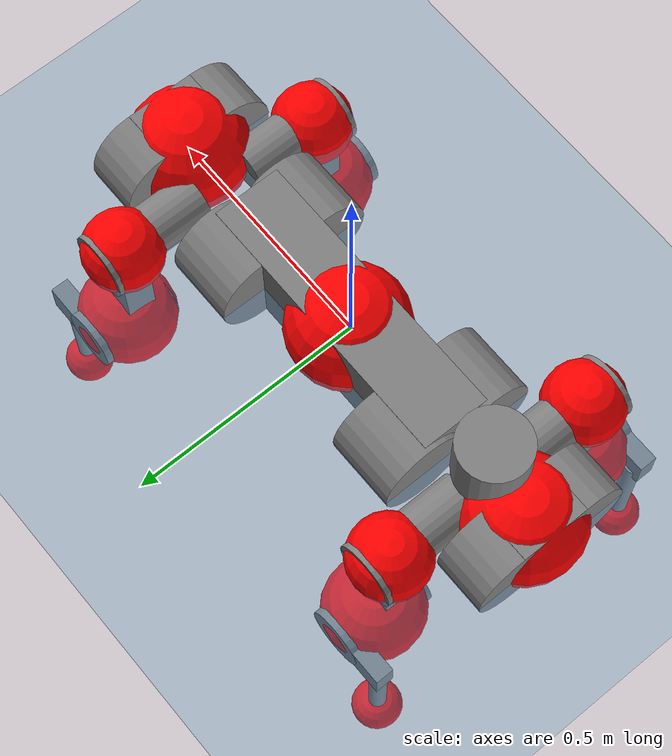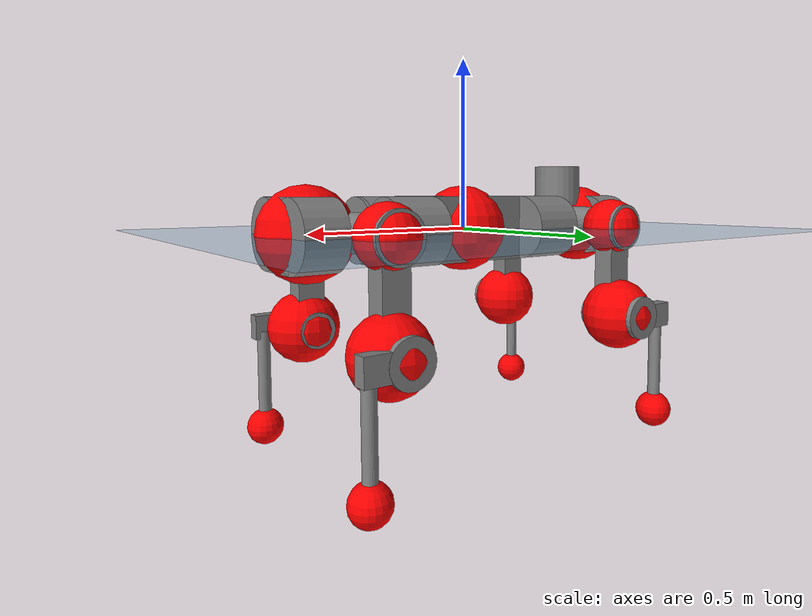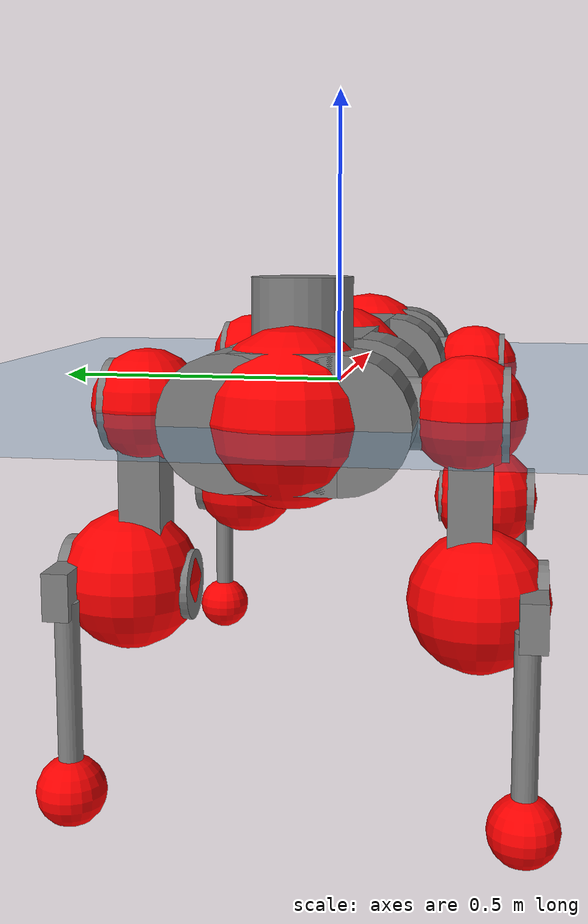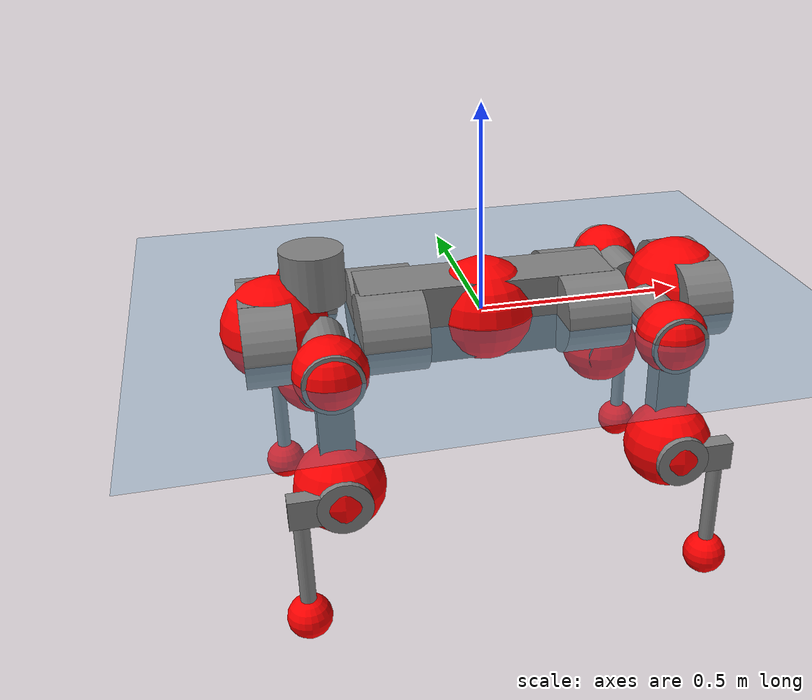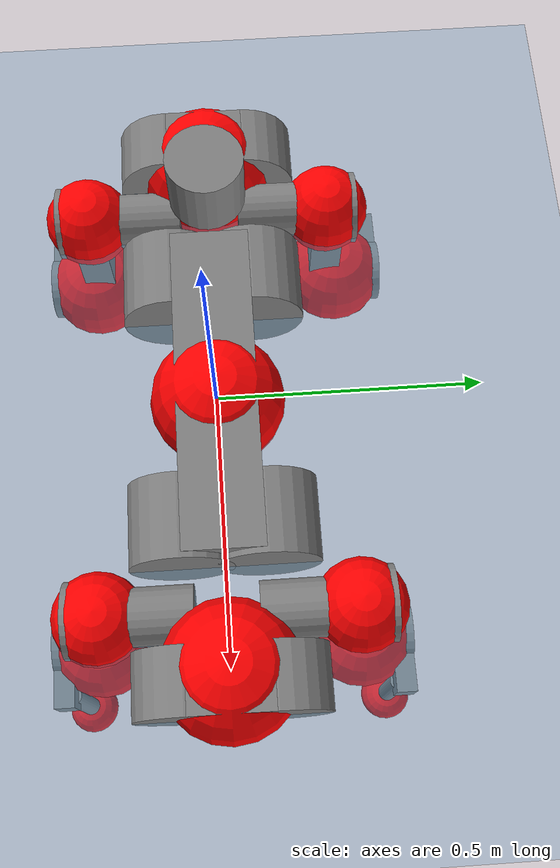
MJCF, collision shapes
<mujoco model="anymal_c">
  <compiler angle="radian" assetdir="assets" balanceinertia="true" inertiafromgeom="false"/>

  <option timestep="0.005" density="1.2" viscosity="2e-05"/>

  <size nkey="1"/>

  <visual>
    <quality shadowsize="8192"/>
    <map shadowclip="0.5"/>
  </visual>

  <default>
    <default class="/">
      <material specular="0" shininess="0.25"/>
      <geom contype="0" conaffinity="0" group="1" solref="-1000 -80"/>
      <site size="0.01 0.005 0.005" group="5"/>
      <general forcelimited="true" forcerange="-80 80" biastype="affine" gainprm="80" biasprm="0 -80 -2"/>
      <default class="anymal_c">
        <joint armature="0.01" damping="0.01" frictionloss="0.1"/>
        <default class="visual">
          <geom type="mesh" group="2"/>
          <default class="visual_zflip"/>
        </default>
        <default class="collision">
          <geom type="cylinder" group="3"/>
          <default class="foot">
            <geom size="0.03 0 0" type="sphere" condim="6" priority="1" friction="0.8 0.02 0.01" solimp="0.015 1 0.03"/>
          </default>
        </default>
      </default>
      <default class="reward_collision_sphere">
        <geom group="5" rgba="1 0 0 1"/>
      </default>
    </default>
  </default>

  <asset>
    <texture type="skybox" colorspace="auto" name="//unnamed_texture_0" builtin="gradient" rgb1="0.95 0.95 0.95" rgb2="0.95 0.95 0.95" width="100" height="600"/>
    <texture type="2d" colorspace="auto" name="texplane" builtin="checker" rgb1="0.345 0.575 0.748" rgb2="0.345 0.575 0.748" markrgb="1 1 1" width="512" height="512"/>
    <texture type="2d" colorspace="linear" name="base" file="base.png"/>
    <texture type="2d" colorspace="linear" name="top_shell" file="top_shell.png"/>
    <texture type="2d" colorspace="linear" name="bottom_shell" file="bottom_shell.png"/>
    <texture type="2d" colorspace="linear" name="remote" file="remote.png"/>
    <texture type="2d" colorspace="linear" name="hatch" file="hatch.png"/>
    <texture type="2d" colorspace="linear" name="handle" file="handle.png"/>
    <texture type="2d" colorspace="linear" name="face" file="face.png"/>
    <texture type="2d" colorspace="linear" name="battery" file="battery.png"/>
    <texture type="2d" colorspace="linear" name="lidar_cage" file="lidar_cage.png"/>
    <texture type="2d" colorspace="linear" name="depth_camera" file="depth_camera.png"/>
    <texture type="2d" colorspace="linear" name="wide_angle_camera" file="wide_angle_camera.png"/>
    <texture type="2d" colorspace="linear" name="lidar" file="lidar.png"/>
    <texture type="2d" colorspace="linear" name="drive" file="drive.png"/>
    <texture type="2d" colorspace="linear" name="hip_l" file="hip_l.png"/>
    <texture type="2d" colorspace="linear" name="shank_l" file="shank_l.png"/>
    <texture type="2d" colorspace="linear" name="foot" file="foot.png"/>
    <texture type="2d" colorspace="linear" name="thigh" file="thigh.png"/>
    <texture type="2d" colorspace="linear" name="shank_r" file="shank_r.png"/>
    <texture type="2d" colorspace="linear" name="hip_r" file="hip_r.png"/>
    <material name="MatPlane" class="/" texture="texplane" texuniform="true" texrepeat="2 2" specular="0.9" shininess="0.5"/>
    <material name="black_plastic" class="/" rgba="0.007 0.007 0.007 1"/>
    <material name="green" class="/" rgba="0.052 0.178 0.033 1"/>
    <material name="red" class="/" rgba="0.178 0.006 0.005 1"/>
    <material name="yellow" class="/" rgba="0.178 0.119 0.006 1"/>
    <material name="lwl" class="/" rgba="0.8 0.8 0.8 1"/>
    <material name="base" class="/" texture="base"/>
    <material name="top_shell" class="/" texture="top_shell"/>
    <material name="bottom_shell" class="/" texture="bottom_shell"/>
    <material name="hip_l" class="/" texture="hip_l"/>
    <material name="thigh" class="/" texture="thigh"/>
    <material name="shank_l" class="/" texture="shank_l"/>
    <material name="foot" class="/" texture="foot"/>
    <material name="hip_r" class="/" texture="hip_r"/>
    <material name="shank" class="/" texture="shank_r"/>
    <material name="hatch" class="/" texture="hatch"/>
    <material name="remote" class="/" texture="remote"/>
    <material name="handle" class="/" texture="handle"/>
    <material name="face" class="/" texture="face"/>
    <material name="depth_camera" class="/" texture="depth_camera"/>
    <material name="wide_angle_camera" class="/" texture="wide_angle_camera"/>
    <material name="battery" class="/" texture="battery"/>
    <material name="lidar_cage" class="/" texture="lidar_cage"/>
    <material name="lidar" class="/" texture="lidar"/>
    <material name="drive" class="/" texture="drive"/>
    <mesh name="base_0" class="/" file="base_0.obj"/>
    <mesh name="base_1" class="/" file="base_1.obj"/>
    <mesh name="base_2" class="/" file="base_2.obj"/>
    <mesh name="base_3" class="/" file="base_3.obj"/>
    <mesh name="base_4" class="/" file="base_4.obj"/>
    <mesh name="base_5" class="/" file="base_5.obj"/>
    <mesh name="top_shell" class="/" file="top_shell.obj"/>
    <mesh name="bottom_shell" class="/" file="bottom_shell.obj"/>
    <mesh name="remote" class="/" file="remote.obj"/>
    <mesh name="handle" class="/" file="handle.obj"/>
    <mesh name="face" class="/" file="face.obj"/>
    <mesh name="wide_angle_camera" class="/" file="wide_angle_camera.obj"/>
    <mesh name="depth_camera" class="/" file="depth_camera.obj"/>
    <mesh name="battery" class="/" file="battery.obj"/>
    <mesh name="lidar_cage" class="/" file="lidar_cage.obj"/>
    <mesh name="lidar" class="/" file="lidar.obj"/>
    <mesh name="drive" class="/" file="drive.obj"/>
    <mesh name="hip_l" class="/" file="hip_l.obj"/>
    <mesh name="thigh" class="/" file="thigh.obj"/>
    <mesh name="shank_l" class="/" file="shank_l.obj"/>
    <mesh name="foot" class="/" file="foot.obj"/>
    <mesh name="hip_r" class="/" file="hip_r.obj"/>
    <mesh name="hatch" class="/" file="hatch.obj"/>
    <mesh name="shank_r" class="/" file="shank_r.obj"/>
  </asset>

  <worldbody>
    <geom name="floor" class="/" size="100 100 0.125" type="plane" group="0" material="MatPlane"/>
    <light name="toplight_shadow" class="/" pos="0 0 5" dir="0.0990148 0.0990148 -0.990148" type="directional" ambient="0.04 0.04 0.04" diffuse="0.55 0.55 0.55" specular="0.12 0.12 0.12"/>
    <light name="toplight_fill" class="/" pos="0 0 5" dir="0.0990148 0.0990148 -0.990148" type="directional" castshadow="false" ambient="0.04 0.04 0.04" diffuse="0.3 0.3 0.3" specular="0.08 0.08 0.08"/>
    <body name="trunk" childclass="anymal_c" pos="0.0047577 0.00171358 0.00231662" quat="0.999998 -0.000773212 0.00070417 -0.00157764">
      <inertial pos="0.00521638 -0.00283891 0.0452578" quat="0.504028 0.500019 0.476182 0.518832" mass="21.6662" diaginertia="0.898194 1.00189 0.145535"/>
      <joint name="//unnamed_joint_0" type="free" armature="0" damping="0" frictionloss="0"/>
      <geom name="//unnamed_geom_1" class="visual" material="green" mesh="base_0"/>
      <geom name="//unnamed_geom_2" class="visual" material="yellow" mesh="base_1"/>
      <geom name="//unnamed_geom_3" class="visual" material="red" mesh="base_2"/>
      <geom name="//unnamed_geom_4" class="visual" material="black_plastic" mesh="base_3"/>
      <geom name="//unnamed_geom_5" class="visual" material="lwl" mesh="base_4"/>
      <geom name="//unnamed_geom_6" class="visual" material="base" mesh="base_5"/>
      <geom name="trunk_1" class="collision" size="0.30639 0.0739563 0.0950867" type="box"/>
      <geom name="trunk_2" class="collision" size="0.0950867 0.0765976" pos="0.240429 0.0776253 0" quat="0.707107 0 0.707107 0"/>
      <geom name="trunk_3" class="collision" size="0.0950867 0.0765976" pos="-0.240429 0.0776253 0" quat="0.707107 0 0.707107 0"/>
      <geom name="trunk_4" class="collision" size="0.0950867 0.0765976" pos="0.240429 -0.0776253 0" quat="0.707107 0 0.707107 0"/>
      <geom name="trunk_5" class="collision" size="0.0950867 0.0765976" pos="-0.240429 -0.0776253 0" quat="0.707107 0 0.707107 0"/>
      <geom name="//unnamed_geom_12" class="visual" material="top_shell" mesh="top_shell"/>
      <geom name="//unnamed_geom_13" class="visual" material="bottom_shell" mesh="bottom_shell"/>
      <geom name="//unnamed_geom_14" class="visual" material="remote" mesh="remote"/>
      <geom name="//unnamed_geom_15" class="visual" material="handle" mesh="handle"/>
      <geom name="//unnamed_geom_16" class="visual" pos="0.458196 0 0" quat="1 0 0 0" material="face" mesh="face"/>
      <geom name="trunk_6" class="collision" size="0.0581085 0.0739563 0.0950867" pos="0.518995 0 0" type="box"/>
      <geom name="//unnamed_geom_18" class="collision" size="0.0950867 0.0581085" pos="0.518995 0.0776253 0" quat="0.707107 0 0.707107 0"/>
      <geom name="//unnamed_geom_19" class="collision" size="0.0950867 0.0581085" pos="0.518995 -0.0776253 0" quat="0.707107 0 0.707107 0"/>
      <geom name="//unnamed_geom_20" class="visual" pos="0.510311 0 -0.0267503" quat="0.965926 0 0.258819 0" material="depth_camera" mesh="depth_camera"/>
      <geom name="//unnamed_geom_21" class="visual" pos="0.56708 0 0.0142994" material="wide_angle_camera" mesh="wide_angle_camera"/>
      <geom name="//unnamed_geom_22" class="visual_zflip" pos="-0.458196 0 0" quat="0 0 0 1" material="face" mesh="face"/>
      <geom name="trunk_7" class="collision" size="0.0581085 0.0739563 0.0950867" pos="-0.518995 0 0" quat="0 0 0 1" type="box"/>
      <geom name="//unnamed_geom_24" class="collision" size="0.0950867 0.0581085" pos="-0.518995 -0.0776253 0" quat="0 -0.707107 0 0.707107"/>
      <geom name="//unnamed_geom_25" class="collision" size="0.0950867 0.0581085" pos="-0.518995 0.0776253 0" quat="0 -0.707107 0 0.707107"/>
      <geom name="//unnamed_geom_26" class="visual" pos="-0.510311 0 -0.0267503" quat="0 -0.258819 0 0.965926" material="depth_camera" mesh="depth_camera"/>
      <geom name="//unnamed_geom_27" class="visual_zflip" pos="-0.56708 0 0.0142994" quat="0 0 0 1" material="wide_angle_camera" mesh="wide_angle_camera"/>
      <geom name="//unnamed_geom_28" class="visual" material="battery" mesh="battery"/>
      <geom name="//unnamed_geom_29" class="visual" pos="0 0.0848289 0.0288903" quat="0.683013 -0.183013 0.183013 0.683013" material="depth_camera" mesh="depth_camera"/>
      <geom name="//unnamed_geom_30" class="visual" pos="0 -0.0848289 0.0288903" quat="0.683013 0.183013 0.183013 -0.683013" material="depth_camera" mesh="depth_camera"/>
      <geom name="//unnamed_geom_31" class="visual" pos="-0.402373 0 0.0702074" quat="1 0 0 0" material="lidar_cage" mesh="lidar_cage"/>
      <geom name="trunk_8" class="collision" size="0.0739563 0.0633911" pos="-0.402373 0 0.12752"/>
      <geom name="//unnamed_geom_33" class="visual" pos="-0.402373 1.38033e-06 0.13583" quat="0.707107 0 0 -0.707107" material="lidar" mesh="lidar"/>
      <geom name="//unnamed_geom_34" class="visual" pos="0.331515 0.115274 2.65186e-09" quat="0.258819 0.965926 0 0" material="drive" mesh="drive"/>
      <geom name="//unnamed_geom_35" class="visual" pos="0.331515 -0.115274 -2.65186e-09" quat="0.258819 -0.965926 0 0" material="drive" mesh="drive"/>
      <geom name="//unnamed_geom_36" class="visual" pos="-0.331515 0.115274 -2.65186e-09" quat="0 0 0.965926 -0.258819" material="drive" mesh="drive"/>
      <geom name="//unnamed_geom_37" class="visual" pos="-0.331515 -0.115274 2.65186e-09" quat="0 0 -0.965926 -0.258819" material="drive" mesh="drive"/>
      <geom name="//unnamed_geom_38" class="visual" pos="0.128229 0 0.0697298" quat="1 0 0 0" material="hatch" mesh="hatch"/>
      <geom name="//unnamed_geom_39" class="reward_collision_sphere" size="0.126782"/>
      <geom name="//unnamed_geom_40" class="reward_collision_sphere" size="0.126782" pos="0.497439 0 0"/>
      <geom name="//unnamed_geom_41" class="reward_collision_sphere" size="0.126782" pos="-0.497439 0 0"/>
      <site name="imu" pos="0.260638 0.0585977 0.0474142" size="0.0105652"/>
      <camera name="track" pos="0 -2.21787 0" quat="0.707107 0.707107 0 0" mode="trackcom"/>
      <camera name="ego_camera" pos="0.497439 0 -0.0382081" quat="-0.5 -0.5 0.5 0.5"/>
      <body name="LF_HIP" pos="0.33323 0.115797 0.0047536" quat="0.254384 0.967103 0.00110942 -0.000541094">
        <inertial pos="0.0651285 -0.0145019 -0.00830208" quat="-0.104964 0.707534 -0.129815 0.686677" mass="2.95363" diaginertia="0.00864407 0.007435 0.00227938"/>
        <joint name="LF_HAA" pos="0 0 0" axis="0.999904 -0.0131729 0.00436552" range="-0.875957 0.481622" armature="0.00751997" damping="0.025022" frictionloss="0.0969141"/>
        <geom name="//unnamed_geom_42" class="visual" pos="0 0.000155997 -2.56224e-05" quat="0.258819 -0.965926 0 0" material="hip_l" mesh="hip_l"/>
        <geom name="//unnamed_geom_43" class="visual" pos="0.0662146 -0.0802248 -0.0451807" quat="0.183013 -0.683013 0.683013 0.183013" material="drive" mesh="drive"/>
        <geom name="//unnamed_geom_44" class="collision" size="0.0528259 0.0739563" pos="0.0662146 -0.0132626 -0.00659568" quat="-0.353553 -0.612372 0.612372 -0.353553"/>
        <body name="LF_THIGH" pos="0.0661652 -0.0806231 -0.0418005" quat="0.182287 -0.683211 0.682893 0.183442">
          <inertial pos="0.0327285 0.00799357 -0.224771" quat="0.99315 -0.00606475 -0.0808453 0.0841394" mass="3.64015" diaginertia="0.0520435 0.0530995 0.00346014"/>
          <joint name="LF_HFE" pos="0 0 0" axis="0.999998 -0.00116332 -0.00162067" range="-3.15991 2.95467" armature="0.0120995" damping="0.051548" frictionloss="0.106717"/>
          <geom name="//unnamed_geom_45" class="visual" pos="-6.99032e-05 -1.10151e-07 0" quat="0.707107 0 0 -0.707107" material="thigh" mesh="thigh"/>
          <geom name="//unnamed_geom_46" class="collision" size="0.0686737 0.0422607" pos="0.0442168 0 0" quat="0.5 0.5 -0.5 -0.5"/>
          <geom name="//unnamed_geom_47" class="collision" size="0.0396194 0.0316956 0.149301" pos="0.0331626 0 -0.134984" quat="0.707107 0 0 -0.707107" type="box"/>
          <geom name="//unnamed_geom_48" class="visual" pos="0.110874 0 -0.272233" quat="1 0 0 0" material="drive" mesh="drive"/>
          <geom name="//unnamed_geom_49" class="collision" size="0.0528259 0.0739563" pos="0.0334942 0 -0.272233" quat="0.707107 0 0.707107 0"/>
          <geom name="//unnamed_geom_50" class="reward_collision_sphere" size="0.0845215" pos="0.0276355 0 0"/>
          <body name="LF_SHANK" pos="0.100896 -0.00865828 -0.276495" quat="1 -7.59314e-05 -5.79254e-05 -2.19112e-05">
            <inertial pos="0.00596647 -0.0650344 -0.0813658" quat="0.993004 -0.115506 -0.000516266 -0.0245143" mass="0.636978" diaginertia="0.016126 0.0156001 0.000902698"/>
            <joint name="LF_KFE" pos="0 0 0" axis="0.99998 -0.00621244 -0.00126233" stiffness="0.0452968" range="-3.22399 3.28138" armature="0.0109167" damping="0.00775789" frictionloss="0.0958922"/>
            <geom name="//unnamed_geom_51" class="visual" pos="-2.27939e-05 -0.000121538 0" quat="0.707107 0 0 -0.707107" material="shank_l" mesh="shank_l"/>
            <geom name="LF_kfe_act" class="collision" size="0.0633911 0.0211304" pos="0.0221084 0 0" quat="0.5 0.5 -0.5 -0.5"/>
            <geom name="//unnamed_geom_53" class="collision" size="0.0607488 0.0356575 0.0200739" pos="0.0221084 -0.0637625 0" quat="0.5 0.5 -0.5 -0.5" type="box"/>
            <geom name="//unnamed_geom_54" class="visual" pos="0.0144257 -0.0975698 -0.32283" quat="0.382683 0 0 -0.92388" material="foot" mesh="foot"/>
            <geom name="LF_calf" class="collision" size="0.0184891 0.149235" pos="0.0144257 -0.0975307 -0.161415" quat="0.707107 0 0 -0.707107"/>
            <geom name="LF_foot" class="foot" size="0.0413984" pos="0.0144257 -0.0975307 -0.301338" quat="0.707107 0 0 -0.707107"/>
            <geom name="//unnamed_geom_57" class="reward_collision_sphere" size="0.105652" pos="-0.055271 0 0"/>
            <geom name="//unnamed_geom_58" class="reward_collision_sphere" size="0.0528259" pos="0.0144257 -0.0975307 -0.301338"/>
            <site name="LF_foot" class="foot" pos="0.0144257 -0.0975307 -0.301338" quat="0.707107 0 0 -0.707107" size="0.0105652"/>
          </body>
        </body>
      </body>
      <body name="RF_HIP" pos="0.329556 -0.117608 -0.0083398" quat="0.259302 -0.965796 -0.000271741 -5.15433e-05">
        <inertial pos="0.0623376 0.0213414 -0.00663027" quat="0.105414 0.673366 0.153474 0.71548" mass="2.93469" diaginertia="0.00891837 0.00726088 0.00237896"/>
        <joint name="RF_HAA" pos="0 0 0" axis="0.999999 0.00115677 0.000289262" range="-0.591288 0.757932" armature="0.0103768" damping="0.0162616" frictionloss="0.103649"/>
        <geom name="//unnamed_geom_59" class="visual" pos="0 -0.000155996 -2.56223e-05" quat="0.258819 0.965926 0 0" material="hip_r" mesh="hip_r"/>
        <geom name="//unnamed_geom_60" class="visual" pos="0.0662146 0.0802248 -0.0451807" quat="0.183013 0.683013 0.683013 -0.183013" material="drive" mesh="drive"/>
        <geom name="//unnamed_geom_61" class="collision" size="0.0528259 0.0739563" pos="0.0662146 0.0132626 -0.00659568" quat="-0.353553 0.612372 0.612372 0.353553"/>
        <body name="RF_THIGH" pos="0.0643472 0.0770201 -0.0341331" quat="0.182977 0.682834 0.683147 -0.183213">
          <inertial pos="0.0347268 0.000150394 -0.226053" quat="0.995396 -0.0336914 -0.0763685 0.0471156" mass="3.24238" diaginertia="0.0461529 0.0447847 0.00297204"/>
          <joint name="RF_HFE" pos="0 0 0" axis="0.999889 0.0145564 -0.00308877" stiffness="0.00875447" range="-2.97393 3.02339" armature="0.0133981" damping="0.011882" frictionloss="0.110582"/>
          <geom name="//unnamed_geom_62" class="visual" pos="-6.99032e-05 -1.10151e-07 0" quat="0.707107 0 0 -0.707107" material="thigh" mesh="thigh"/>
          <geom name="//unnamed_geom_63" class="collision" size="0.0686737 0.0422607" pos="0.0442168 0 0" quat="0.5 0.5 0.5 0.5"/>
          <geom name="//unnamed_geom_64" class="collision" size="0.0396194 0.0316956 0.149301" pos="0.0331626 0 -0.134984" quat="0.707107 0 0 0.707107" type="box"/>
          <geom name="//unnamed_geom_65" class="visual" pos="0.110874 0 -0.272233" quat="1 0 0 0" material="drive" mesh="drive"/>
          <geom name="//unnamed_geom_66" class="collision" size="0.0528259 0.0739563" pos="0.0334942 0 -0.272233" quat="0.707107 0 0.707107 0"/>
          <geom name="//unnamed_geom_67" class="reward_collision_sphere" size="0.0845215" pos="0.0276355 0 0"/>
          <body name="RF_SHANK" pos="0.109857 0.00246249 -0.273513" quat="1 1.08199e-06 -5.02884e-05 1.63563e-05">
            <inertial pos="0.00746007 0.06993 -0.08724" quat="0.993448 0.11258 0.00935634 0.0172944" mass="0.836898" diaginertia="0.0186238 0.0153575 0.00109944"/>
            <joint name="RF_KFE" pos="0 0 0" axis="0.999986 0.00197518 -0.00487823" range="-3.07716 3.19165" armature="0.00774969" damping="0.00743548" frictionloss="0.10402"/>
            <geom name="//unnamed_geom_68" class="visual" pos="-2.27938e-05 0.000121538 0" quat="0.707107 0 0 0.707107" material="shank" mesh="shank_r"/>
            <geom name="RF_kfe_act" class="collision" size="0.0633911 0.0211304" pos="0.0221084 0 0" quat="0.5 0.5 0.5 0.5"/>
            <geom name="//unnamed_geom_70" class="collision" size="0.0607488 0.0356575 0.0200739" pos="0.0221084 0.0637625 0" quat="0.5 0.5 0.5 0.5" type="box"/>
            <geom name="//unnamed_geom_71" class="visual" pos="0.0144257 0.0975698 -0.32283" quat="0.382683 0 0 0.92388" material="foot" mesh="foot"/>
            <geom name="RF_calf" class="collision" size="0.0184891 0.149235" pos="0.0144257 0.0975307 -0.161415" quat="0.707107 0 0 0.707107"/>
            <geom name="RF_foot" class="foot" size="0.0313749" pos="0.0144257 0.0975307 -0.301338" quat="0.707107 0 0 0.707107"/>
            <geom name="//unnamed_geom_74" class="reward_collision_sphere" size="0.105652" pos="-0.055271 0 0"/>
            <geom name="//unnamed_geom_75" class="reward_collision_sphere" size="0.0528259" pos="0.0144257 0.0975307 -0.301338"/>
            <site name="RF_foot" class="foot" pos="0.0144257 0.0975307 -0.301338" quat="0.707107 0 0 0.707107" size="0.0105652"/>
          </body>
        </body>
      </body>
      <body name="LH_HIP" pos="-0.332427 0.117346 0.00789593" quat="-0.00018692 -0.000295536 0.965933 -0.258794">
        <inertial pos="0.0638681 0.0146573 -0.000235133" quat="0.128681 0.682184 0.122849 0.709207" mass="2.89265" diaginertia="0.00862905 0.00848262 0.00261992"/>
        <joint name="LH_HAA" pos="0 0 0" axis="0.999995 0.00245295 -0.0018102" stiffness="0.00139747" range="-0.680019 0.568422" armature="0.0102389" damping="0.0250801" frictionloss="0.0656741"/>
        <geom name="//unnamed_geom_76" class="visual" pos="0 -0.000155996 -2.56223e-05" quat="-0.258819 -0.965926 0 0" material="hip_r" mesh="hip_r"/>
        <geom name="//unnamed_geom_77" class="visual" pos="0.0662146 0.0802248 -0.0451807" quat="0.183013 0.683013 0.683013 -0.183013" material="drive" mesh="drive"/>
        <geom name="//unnamed_geom_78" class="collision" size="0.0528259 0.0739563" pos="0.0662146 0.0132626 -0.00659568" quat="-0.353553 0.612372 0.612372 0.353553"/>
        <body name="LH_THIGH" pos="0.0671147 0.0801826 -0.0376833" quat="0.183177 0.683159 0.682764 -0.183229">
          <inertial pos="0.0413273 0.00141745 -0.224871" quat="0.995943 0.00906807 -0.049498 0.0746029" mass="3.50079" diaginertia="0.0542285 0.0503721 0.00359058"/>
          <joint name="LH_HFE" pos="0 0 0" axis="0.999342 0.0356177 0.00686952" range="-2.98981 3.11429" armature="0.0102545" damping="0.00777313" frictionloss="0.0984664"/>
          <geom name="//unnamed_geom_79" class="visual" pos="-6.99032e-05 -1.10151e-07 0" quat="0.707107 0 0 -0.707107" material="thigh" mesh="thigh"/>
          <geom name="//unnamed_geom_80" class="collision" size="0.0686737 0.0422607" pos="0.0442168 0 0" quat="0.5 0.5 -0.5 -0.5"/>
          <geom name="//unnamed_geom_81" class="collision" size="0.0396194 0.0316956 0.149301" pos="0.0331626 0 -0.134984" quat="0.707107 0 0 -0.707107" type="box"/>
          <geom name="//unnamed_geom_82" class="visual" pos="0.110874 0 -0.272233" quat="1 0 0 0" material="drive" mesh="drive"/>
          <geom name="//unnamed_geom_83" class="collision" size="0.0528259 0.0739563" pos="0.0334942 0 -0.272233" quat="0.707107 0 0.707107 0"/>
          <geom name="//unnamed_geom_84" class="reward_collision_sphere" size="0.0845215" pos="0.0276355 0 0"/>
          <body name="LH_SHANK" pos="0.114313 -0.0014515 -0.267119" quat="0.999999 -0.000679195 0.00114583 0.00038236">
            <inertial pos="0.0030376 0.0713202 -0.0812125" quat="0.99164 0.12422 -0.028947 0.0195229" mass="0.741512" diaginertia="0.0168433 0.0153313 0.000898376"/>
            <joint name="LH_KFE" pos="0 0 0" axis="0.99993 0.00323965 0.0113702" stiffness="0.048903" range="-3.14875 3.14358" armature="0.011089" damping="0.0187676" frictionloss="0.0887287"/>
            <geom name="//unnamed_geom_85" class="visual" pos="-2.27938e-05 0.000121538 0" quat="-0.707107 0 0 -0.707107" material="shank" mesh="shank_r"/>
            <geom name="LH_kfe_act" class="collision" size="0.0633911 0.0211304" pos="0.0221084 0 0" quat="0.5 0.5 -0.5 -0.5"/>
            <geom name="//unnamed_geom_87" class="collision" size="0.0607488 0.0356575 0.0200739" pos="0.0221084 0.0637625 0" quat="0.5 0.5 -0.5 -0.5" type="box"/>
            <geom name="//unnamed_geom_88" class="visual" pos="0.0144257 0.0975698 -0.32283" quat="-0.382683 0 0 -0.92388" material="foot" mesh="foot"/>
            <geom name="LH_calf" class="collision" size="0.0184891 0.149235" pos="0.0144257 0.0975307 -0.161415" quat="0.707107 0 0 -0.707107"/>
            <geom name="LH_foot" class="foot" size="0.0307384" pos="0.0144257 0.0975307 -0.301338" quat="0.707107 0 0 -0.707107"/>
            <geom name="//unnamed_geom_91" class="reward_collision_sphere" size="0.105652" pos="-0.055271 0 0"/>
            <geom name="//unnamed_geom_92" class="reward_collision_sphere" size="0.0528259" pos="0.0144257 0.0975307 -0.301338"/>
            <site name="LH_foot" class="foot" pos="0.0144257 0.0975307 -0.301338" quat="0.707107 0 0 -0.707107" size="0.0105652"/>
          </body>
        </body>
      </body>
      <body name="RH_HIP" pos="-0.331541 -0.115775 -0.00403259" quat="-9.74329e-05 -0.000263169 -0.965845 -0.25912">
        <inertial pos="0.0640878 -0.0243382 -0.00322476" quat="-0.127386 0.709689 -0.134717 0.679681" mass="3.58697" diaginertia="0.0105843 0.00905697 0.00289559"/>
        <joint name="RH_HAA" pos="0 0 0" axis="0.999999 -0.00013856 -0.00154961" range="-0.73718 0.611434" armature="0.0118727" damping="0.0408543" frictionloss="0.102318"/>
        <geom name="//unnamed_geom_93" class="visual" pos="0 0.000155997 -2.56224e-05" quat="-0.258819 0.965926 0 0" material="hip_l" mesh="hip_l"/>
        <geom name="//unnamed_geom_94" class="visual" pos="0.0662146 -0.0802248 -0.0451807" quat="-0.183013 0.683013 -0.683013 -0.183013" material="drive" mesh="drive"/>
        <geom name="//unnamed_geom_95" class="collision" size="0.0528259 0.0739563" pos="0.0662146 -0.0132626 -0.00659568" quat="0.353553 0.612372 -0.612372 0.353553"/>
        <body name="RH_THIGH" pos="0.0675227 -0.0832423 -0.0482671" quat="-0.182791 0.682998 -0.68306 -0.183113">
          <inertial pos="0.0377203 -0.0047703 -0.234365" quat="0.993187 -0.00769202 -0.0798005 0.0845708" mass="4.20565" diaginertia="0.0526526 0.0527082 0.00331551"/>
          <joint name="RH_HFE" pos="0 0 0" axis="0.999996 -0.00262244 0.000455765" range="-2.97446 2.99108" armature="0.0112202" damping="0.00750444" frictionloss="0.139146"/>
          <geom name="//unnamed_geom_96" class="visual" pos="-6.99032e-05 -1.10151e-07 0" quat="0.707107 0 0 -0.707107" material="thigh" mesh="thigh"/>
          <geom name="//unnamed_geom_97" class="collision" size="0.0686737 0.0422607" pos="0.0442168 0 0" quat="0.5 0.5 0.5 0.5"/>
          <geom name="//unnamed_geom_98" class="collision" size="0.0396194 0.0316956 0.149301" pos="0.0331626 0 -0.134984" quat="0.707107 0 0 0.707107" type="box"/>
          <geom name="//unnamed_geom_99" class="visual" pos="0.110874 0 -0.272233" quat="1 0 0 0" material="drive" mesh="drive"/>
          <geom name="//unnamed_geom_100" class="collision" size="0.0528259 0.0739563" pos="0.0334942 0 -0.272233" quat="0.707107 0 0.707107 0"/>
          <geom name="//unnamed_geom_101" class="reward_collision_sphere" size="0.0845215" pos="0.0276355 0 0"/>
          <body name="RH_SHANK" pos="0.102369 -9.61706e-05 -0.27486" quat="1 0.000488954 -0.000401083 0.000553109">
            <inertial pos="0.00558403 -0.0674304 -0.0771641" quat="0.992276 -0.12092 0.00509014 -0.0272203" mass="0.778541" diaginertia="0.0174281 0.0158932 0.000960572"/>
            <joint name="RH_KFE" pos="0 0 0" axis="0.999907 0.0135645 -0.00137533" stiffness="0.0132585" range="-3.10783 3.07675" armature="0.0114495" damping="0.0496351" frictionloss="0.0983365"/>
            <geom name="//unnamed_geom_102" class="visual" pos="-2.27939e-05 -0.000121538 0" quat="0.707107 0 0 -0.707107" material="shank_l" mesh="shank_l"/>
            <geom name="RH_kfe_act" class="collision" size="0.0633911 0.0211304" pos="0.0221084 0 0" quat="0.5 0.5 0.5 0.5"/>
            <geom name="//unnamed_geom_104" class="collision" size="0.0607488 0.0356575 0.0200739" pos="0.0221084 -0.0637625 0" quat="0.5 0.5 0.5 0.5" type="box"/>
            <geom name="//unnamed_geom_105" class="visual" pos="0.0144257 -0.0975698 -0.32283" quat="0.382683 0 0 -0.92388" material="foot" mesh="foot"/>
            <geom name="RH_calf" class="collision" size="0.0184891 0.149235" pos="0.0144257 -0.0975307 -0.161415" quat="0.707107 0 0 0.707107"/>
            <geom name="RH_foot" class="foot" size="0.028717" pos="0.0144257 -0.0975307 -0.301338" quat="0.707107 0 0 0.707107"/>
            <geom name="//unnamed_geom_108" class="reward_collision_sphere" size="0.105652" pos="-0.055271 0 0"/>
            <geom name="//unnamed_geom_109" class="reward_collision_sphere" size="0.0528259" pos="0.0144257 -0.0975307 -0.301338"/>
            <site name="RH_foot" class="foot" pos="0.0144257 -0.0975307 -0.301338" quat="0.707107 0 0 0.707107" size="0.0105652"/>
          </body>
        </body>
      </body>
    </body>
  </worldbody>

  <contact>
    <pair class="/" geom1="floor" geom2="LF_foot" name="//unnamed_contact_0"/>
    <pair class="/" geom1="floor" geom2="RF_foot" name="//unnamed_contact_1"/>
    <pair class="/" geom1="floor" geom2="LH_foot" name="//unnamed_contact_2"/>
    <pair class="/" geom1="floor" geom2="RH_foot" name="//unnamed_contact_3"/>
  </contact>

  <actuator>
    <general name="LF_HAA" class="/" joint="LF_HAA" forcerange="-90.2331 90.2331" gainprm="85.0807" biasprm="0 -85.0807 -1.73325"/>
    <general name="LF_HFE" class="/" joint="LF_HFE" forcerange="-63.5045 63.5045" gainprm="85.0807" biasprm="0 -85.0807 -1.73325"/>
    <general name="LF_KFE" class="/" joint="LF_KFE" forcerange="-108.777 108.777" gainprm="85.0807" biasprm="0 -85.0807 -1.73325"/>
    <general name="RF_HAA" class="/" joint="RF_HAA" forcerange="-92.6793 92.6793" gainprm="85.0807" biasprm="0 -85.0807 -1.73325"/>
    <general name="RF_HFE" class="/" joint="RF_HFE" forcerange="-73.8854 73.8854" gainprm="85.0807" biasprm="0 -85.0807 -1.73325"/>
    <general name="RF_KFE" class="/" joint="RF_KFE" forcerange="-52.0327 52.0327" gainprm="85.0807" biasprm="0 -85.0807 -1.73325"/>
    <general name="LH_HAA" class="/" joint="LH_HAA" forcerange="-59.5627 59.5627" gainprm="85.0807" biasprm="0 -85.0807 -1.73325"/>
    <general name="LH_HFE" class="/" joint="LH_HFE" forcerange="-78.2492 78.2492" gainprm="85.0807" biasprm="0 -85.0807 -1.73325"/>
    <general name="LH_KFE" class="/" joint="LH_KFE" forcerange="-96.8165 96.8165" gainprm="85.0807" biasprm="0 -85.0807 -1.73325"/>
    <general name="RH_HAA" class="/" joint="RH_HAA" forcerange="-86.253 86.253" gainprm="85.0807" biasprm="0 -85.0807 -1.73325"/>
    <general name="RH_HFE" class="/" joint="RH_HFE" forcerange="-114.701 114.701" gainprm="85.0807" biasprm="0 -85.0807 -1.73325"/>
    <general name="RH_KFE" class="/" joint="RH_KFE" forcerange="-103.535 103.535" gainprm="85.0807" biasprm="0 -85.0807 -1.73325"/>
  </actuator>

  <sensor>
    <gyro site="imu" name="imu_angular_velocity"/>
    <velocimeter site="imu" name="imu_linear_velocity"/>
    <framelinvel objtype="site" objname="LF_foot" name="LF_foot_global_linear_velocity"/>
    <framelinvel objtype="site" objname="RF_foot" name="RF_foot_global_linear_velocity"/>
    <framelinvel objtype="site" objname="LH_foot" name="LH_foot_global_linear_velocity"/>
    <framelinvel objtype="site" objname="RH_foot" name="RH_foot_global_linear_velocity"/>
  </sensor>

  <keyframe>
    <key name="home" qpos="0 0 0.55 1 0 0 0 0 0.4 -0.8 0 -0.4 0.8 0 -0.4 0.8 0 0.4 -0.8"/>
  </keyframe>
</mujoco>
